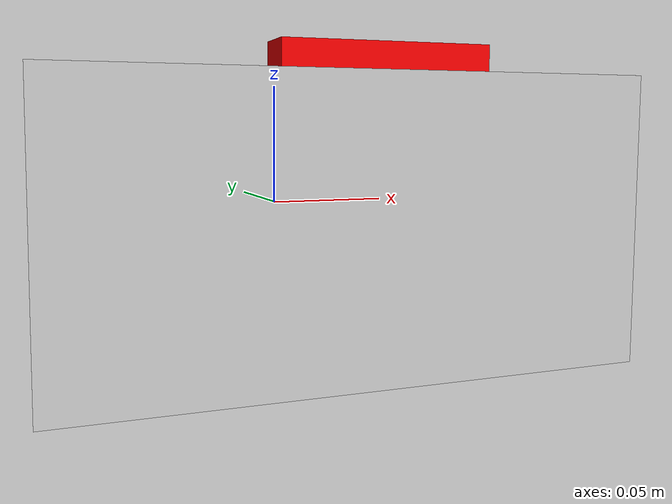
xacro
<?xml version="1.0"?>
<robot xmlns:xacro="http://www.ros.org/wiki/xacro" name="base_robot">

    <!-- 基础机器人链接 -->
    <link name="base_link">
        <visual>
            <geometry>
                <box size="0.2 0.2 0.1"/>
            </geometry>
            <material name="white">
                <color rgba="0.8 0.8 0.8 1"/>
            </material>
        </visual>
        <collision>
            <geometry>
                <box size="0.2 0.2 0.1"/>
            </geometry>
        </collision>
        <inertial>
            <mass value="50.0"/>  <!-- 大幅增加质量防止反作用力 -->
            <inertia ixx="4.17" ixy="0" ixz="0" iyy="4.17" iyz="0" izz="4.17"/>  <!-- 相应增加惯性矩 -->
        </inertial>
    </link>

    <!-- 前方标记 - 在正方体上方 -->
    <link name="front_marker">
        <visual>
            <geometry>
                <box size="0.1 0.02 0.02"/>  <!-- 一个细长的红色条作为前方标记 -->
            </geometry>
            <material name="red">
                <color rgba="1 0 0 1"/>
            </material>
        </visual>
        <!-- 禁用碰撞检测 -->
        <inertial>
            <mass value="0.01"/>
            <inertia ixx="0.0001" ixy="0" ixz="0" iyy="0.0001" iyz="0" izz="0.0001"/>
        </inertial>
    </link>

    <!-- 固定前方标记到机体上方 -->
    <joint name="front_marker_joint" type="fixed">
        <parent link="base_link"/>
        <child link="front_marker"/>
        <origin xyz="0.05 0 0.06" rpy="0 0 0"/>  <!-- 在机体上方，稍微偏前 -->
    </joint>

    <!-- 禁用重力和碰撞 -->
    <gazebo reference="base_link">
        <gravity>false</gravity>
        <material>Gazebo/Grey</material>
        <!-- 增加阻尼来稳定机体 -->
        <dampingFactor>0.5</dampingFactor>
        <collision>
            <surface>
                <contact>
                    <ode>
                        <kp>0</kp>
                        <kd>0</kd>
                    </ode>
                </contact>
            </surface>
        </collision>
    </gazebo>

    <gazebo reference="front_marker">
        <gravity>false</gravity>
        <material>Gazebo/Red</material>
        <collision>
            <surface>
                <contact>
                    <ode>
                        <kp>0</kp>
                        <kd>0</kd>
                    </ode>
                </contact>
            </surface>
        </collision>
    </gazebo>

</robot>
